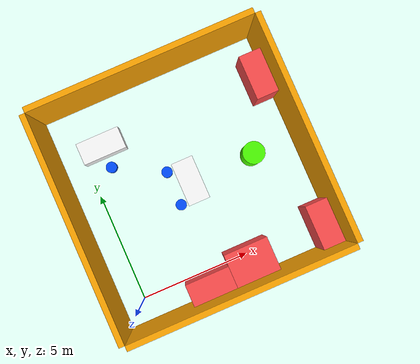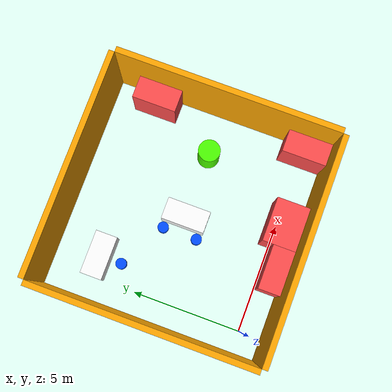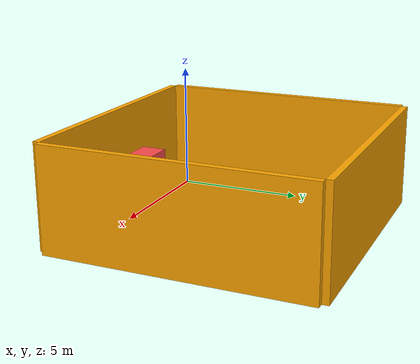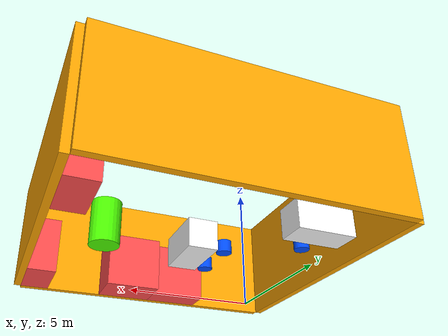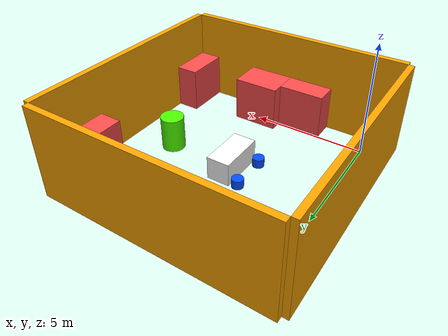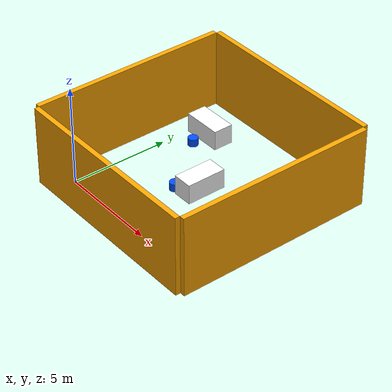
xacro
<?xml version="1.0"?>
<robot xmlns:xacro="http://www.ros.org/wiki/xacro" name="room">

    <xacro:property name="wall_length" value="10.0" />
    <xacro:property name="wall_width" value="0.25" />
    <xacro:property name="wall_height" value="4" />

    <xacro:property name="half_wall_length" value="${wall_length/2.0}" />
    <xacro:property name="half_wall_width" value="${wall_width/2.0}" />
    <xacro:property name="half_wall_height" value="${wall_height/2.0}" />

    <xacro:property name="M_PI" value="3.14159265359"/>

    <!-- Default Inertial macro -->
    <xacro:macro name="default_inertial" params="mass">
        <inertial>
            <mass value="${mass}"/>
            <inertia ixx="1.0" ixy="0.0" ixz="0.0"
                     iyy="1.0" iyz="0.0"
                     izz="1.0"/>
        </inertial>
    </xacro:macro>

    <!-- Materials -->
    <material name='orange'>
        <color rgba='1 0.65 0 1' />
    </material>

    <material name='black'>
        <color rgba='1 1 1 1' />
    </material>

    <material name='cyan'>
        <color rgba='0 0.3 1 1' />
    </material>

    <material name='lime'>
        <color rgba='0.3 1 0 1' />
    </material>

    <material name='peach'>
        <color rgba='1 0.3 0.3 1' />
    </material>

    <!-- World Link -->
    <link name="world"/>

    <link name="map"/>

    <joint name="world_to_map_joint" type="fixed">
        <parent link="world" />
        <child link="map" />
    </joint>

    <link name="base_link"/>

    <joint name="map_to_base_joint" type="fixed">
        <parent link="map" />
        <child link="base_link" />
        <origin xyz="-1 -1 0" rpy="0 0 0" />
    </joint>

    <!-- Wall macro -->
    <xacro:macro name="wall" params="*origin number">
        <link name="wall_${number}_link">
            <visual>
                <geometry>
                    <box size="${wall_length} ${wall_width} ${wall_height}" />
                </geometry>
                <material name='orange' />
            </visual>
            <collision>
                <geometry>
                    <box size="${wall_length} ${wall_width} ${wall_height}" />
                </geometry>
            </collision>
            <xacro:default_inertial mass="50" />
        </link>

        <joint name="wall_${number}_joint" type="fixed">
            <parent link="base_link" />
            <child link="wall_${number}_link" />
            <xacro:insert_block name="origin" />
        </joint>

        <gazebo reference="wall_${number}_link">
            <material>Gazebo/Orange</material>
        </gazebo>
    </xacro:macro>

    <!-- Place walls -->
    <xacro:wall number="1">
        <origin xyz="${half_wall_length} ${-half_wall_width} ${half_wall_height}" rpy="0 0 0" />
    </xacro:wall>

    <xacro:wall number="2">
        <origin xyz="${half_wall_length} ${wall_length + half_wall_width} ${half_wall_height}" rpy="0 0 0" />
    </xacro:wall>

    <xacro:wall number="3">
        <origin xyz="${-half_wall_width} ${half_wall_length} ${half_wall_height}" rpy="0 0 ${M_PI/2.0}" />
    </xacro:wall>

    <xacro:wall number="4">
        <origin xyz="${wall_length + half_wall_width} ${half_wall_length} ${half_wall_height}" rpy="0 0 ${M_PI/2.0}" />
    </xacro:wall>

    <!-- Block macro -->
    <xacro:macro name="block" params="number size color *origin *material">
        <link name="block_${number}_link">
            <visual>
                <geometry>
                    <box size="${size}" />
                </geometry>
                <material name="${color}" />
            </visual>
            <collision>
                <geometry>
                    <box size="${size}" />
                </geometry>
            </collision>
            <xacro:default_inertial mass="20" />
        </link>

        <joint name="block_${number}_joint" type="fixed">
            <parent link="base_link" />
            <child link="block_${number}_link" />
            <xacro:insert_block name="origin" />
        </joint>

        <gazebo reference="block_${number}_link">
            <xacro:insert_block name="material" />
        </gazebo>
    </xacro:macro>

    <!-- Place blocks -->
    <xacro:property name="table_height" value="1.0" />

    <xacro:block number="table_1" size="2 1 ${table_height}" color="black">
        <origin xyz="5 5 ${table_height/2.0}" rpy="0 0 ${M_PI/2.0}" />
        <gazebo_material>Gazebo/Purple</gazebo_material>
    </xacro:block>

    <xacro:block number="table_2" size="2 1 ${table_height}" color="black">
        <origin xyz="2 8 ${table_height/2.0}" rpy="0 0 0" />
        <material>Gazebo/Purple</material>
    </xacro:block>

    <xacro:property name="cabinet_height" value="2.0" />

    <xacro:block number="cabinet_1" size="2 1 ${cabinet_height}" color="peach">
        <origin xyz="9.5 8 ${cabinet_height/2.0}" rpy="0 0 ${M_PI/2.0}" />
        <material>Gazebo/White</material>
    </xacro:block>

    <xacro:block number="cabinet_2" size="2 1 ${cabinet_height}" color="peach">
        <origin xyz="9.5 1 ${cabinet_height/2.0}" rpy="0 0 ${M_PI/2.0}" />
        <material>Gazebo/White</material>
    </xacro:block>

    <xacro:block number="cabinet_3" size="2 1.5 ${cabinet_height}" color="peach">
        <origin xyz="6 ${1.5/2.0} ${cabinet_height/2.0}" rpy="0 0 0" />
        <material>Gazebo/White</material>
    </xacro:block>

    <xacro:block number="cabinet_4" size="2 1 ${cabinet_height}" color="peach">
        <origin xyz="4 0.5 ${cabinet_height/2.0}" rpy="0 0 0" />
        <material>Gazebo/White</material>
    </xacro:block>

    <!-- Stool Macro -->
    <xacro:macro name="stool" params="name radius height color *origin *material">
        <link name="stool_${name}_link">
            <visual>
                <geometry>
                    <cylinder radius="${radius}" length="${height}" />
                </geometry>
                <material name="${color}" />
            </visual>
            <collision>
                <geometry>
                    <cylinder radius="${radius}" length="${height}" />
                </geometry>
            </collision>
            <xacro:default_inertial mass="10" />
        </link>

        <joint name="stool_${name}_joint" type="fixed">
            <parent link="base_link" />
            <child link="stool_${name}_link" />
            <xacro:insert_block name="origin" />
        </joint>

        <gazebo reference="stool_${name}_link">
            <xacro:insert_block name="material" />
        </gazebo>
    </xacro:macro>

    <!-- Place cylinders -->
    <xacro:stool name="tall" radius="0.5" height="1.5" color='lime'>
        <origin xyz="8 5 ${1.5/2.0}" rpy="0 0 0" />
        <material>Gazebo/Green</material>
    </xacro:stool>

    <xacro:property name="stool_height" value="0.4" />
    <xacro:property name="stool_rad" value="0.25" />

    <xacro:stool name="1" radius="${stool_rad}" height="${stool_height}" color='cyan'>
        <origin xyz="2 7 ${stool_height/2.0}" rpy="0 0 0" />
        <material>Gazebo/Turquoise</material>
    </xacro:stool>

    <xacro:stool name="2" radius="${stool_rad}" height="${stool_height}" color='cyan'>
        <origin xyz="4.2 4.2 ${stool_height/2.0}" rpy="0 0 0" />
        <material>Gazebo/Turquoise</material>
    </xacro:stool>

    <xacro:stool name="3" radius="${stool_rad}" height="${stool_height}" color='cyan'>
        <origin xyz="4.2 5.8 ${stool_height/2.0}" rpy="0 0 0" />
        <material>Gazebo/Turquoise</material>
    </xacro:stool>

</robot>
